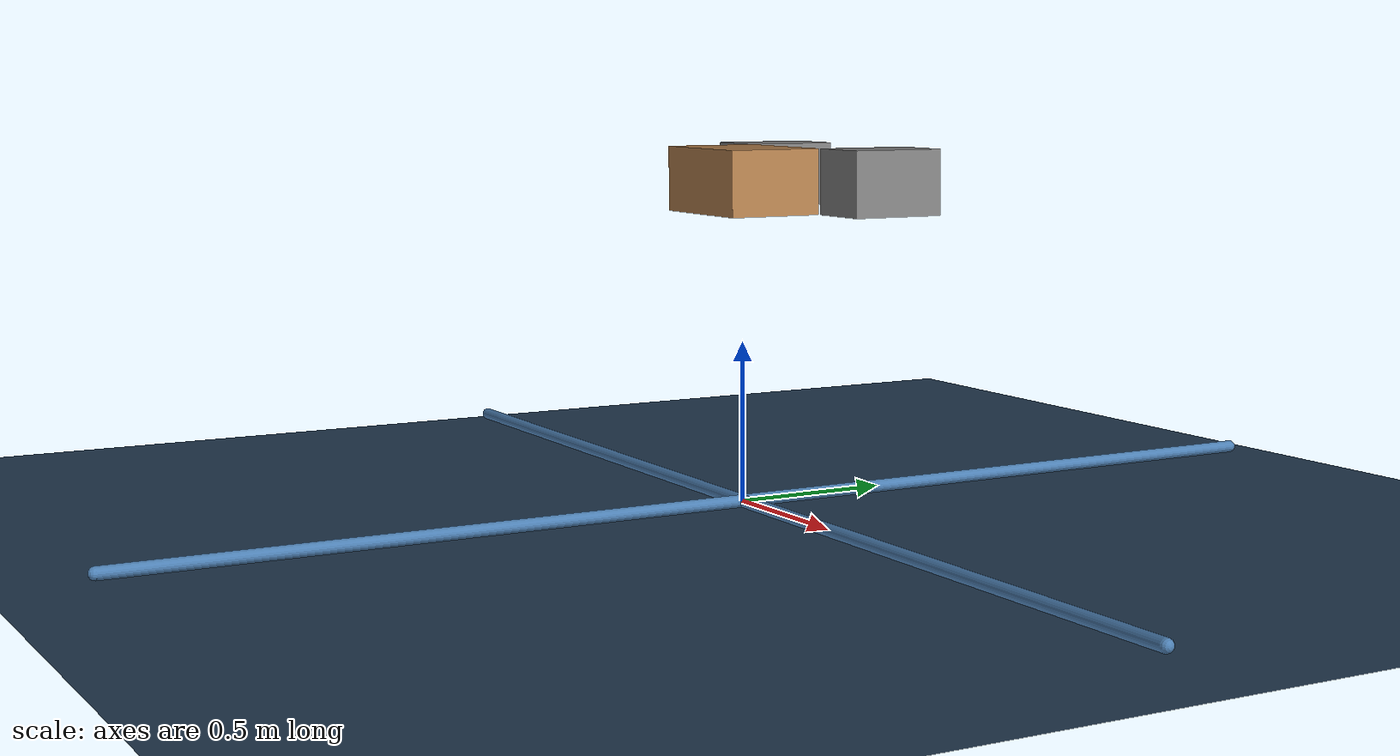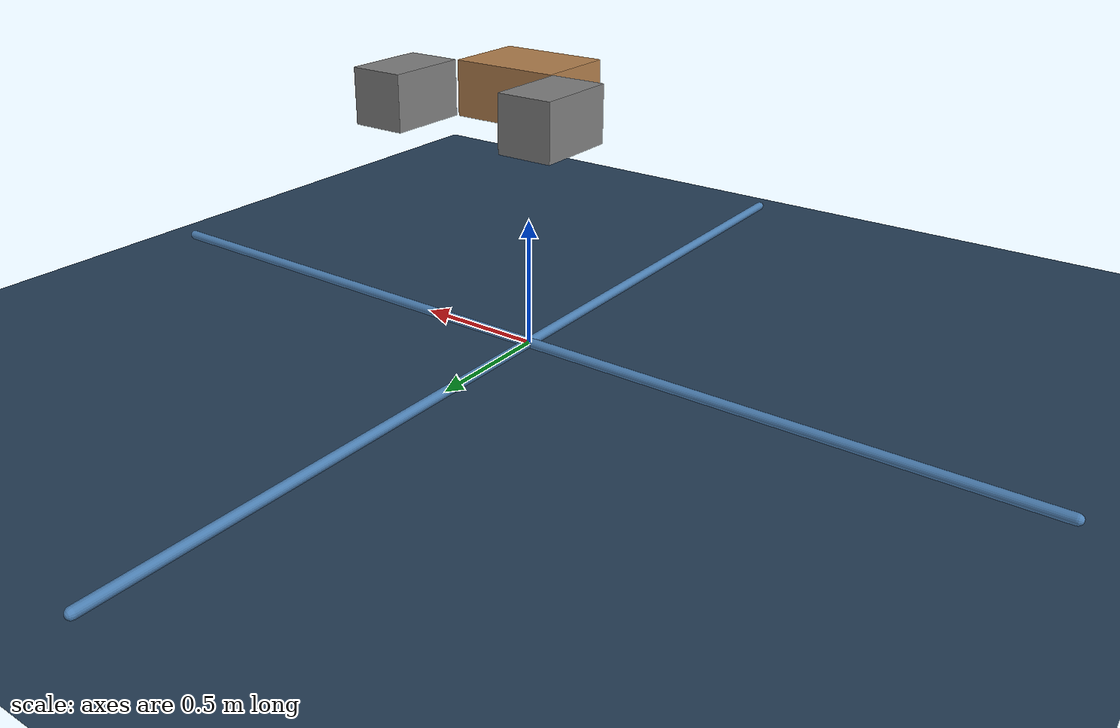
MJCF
<mujoco model="2d_slider">
    <actuator>
        <motor name="slide_x" joint="slider_x" gear="10" ctrllimited="true" ctrlrange="-1 1" />
        <motor name="slide_y" joint="slider_y" gear="10" ctrllimited="true" ctrlrange="-1 1" />
    </actuator>
    <asset>
        <texture name="grid" type="2d" builtin="checker" rgb1=".1 .2 .3" rgb2=".2 .3 .4" width="300" height="300" mark="edge" markrgb=".2 .3 .4"/>
        <material name="grid" texture="grid" texrepeat="1 1" texuniform="true" reflectance=".2"/>
        <material name="self" rgba=".7 .5 .3 1"/>
        <material name="self_default" rgba=".7 .5 .3 1"/>
        <material name="self_highlight" rgba="0 .5 .3 1"/>
        <material name="effector" rgba=".7 .4 .2 1"/>
        <material name="effector_default" rgba=".7 .4 .2 1"/>
        <material name="effector_highlight" rgba="0 .5 .3 1"/>
        <material name="decoration" rgba=".3 .5 .7 1"/>
        <material name="eye" rgba="0 .2 1 1"/>
        <material name="target" rgba=".6 .3 .3 1"/>
        <material name="target_default" rgba=".6 .3 .3 1"/>
        <material name="target_highlight" rgba=".6 .3 .3 .4"/>
        <material name="site" rgba=".5 .5 .5 .3"/>
        <material name="transparent" rgba=".5 .5 .5 .0"/>
    </asset>
    <worldbody>
        <light name="light" pos="0 0 5"/>
        <camera name="fixed" pos="0 0 4" zaxis="0 0 1"/>
        <geom name="floor" pos="0 0 -.05" size="4 4 .2" type="plane" material="grid"/>
        <geom name="rail1" type="capsule" zaxis="1 0 0" size="0.02 2" material="decoration" />
        <geom name="rail2" type="capsule" zaxis="0 1 0" size="0.02 2" material="decoration" />
        <body name="slider_x" pos="0 0 1">
            <joint name="slider_x" type="slide" limited="true" axis="1 0 0" range="-0.1 0.1" solreflimit=".08 1" damping="5e-4"/>
            <geom name="slider_x" type="box" size="0.2 0.15 0.1"  mass=".1" material="transparent"/>
            <body name="slider_y">
                <joint name="slider_y" type="slide" limited="true" axis="0 1 0" range="-0.1 0.1" solreflimit=".08 1" damping="5e-4"/>
                <geom name="slider_y" type="box" size="0.2 0.15 0.1"  mass=".1" material="transparent"/>
                <body name="ft_sensor">
                    <site name="ft_frame" pos="0 0 0" size="0.01 0.01 0.01" rgba="1 0 0 0.5" type="sphere" group="0" />
                    <body name="slider_tip">
                        <geom name="slider_tip" type="box" size="0.2 0.15 0.1"  mass="0.1" material="self"/>
                    </body>
                </body>
            </body>
        </body>
        <body name = "slot" pos="0 0.3 1">
            <geom name="slot_1" type="box" pos="-0.31 0 0" size="0.1 0.15 0.1"/>
            <geom name="slot_2" type="box" pos="0.31 0 0" size="0.1 0.15 0.1"/>
        </body>
    </worldbody>
    <sensor>
        <force name="force_ee" site="ft_frame"/>
        <torque name="torque_ee" site="ft_frame"/>
    </sensor>
</mujoco>
